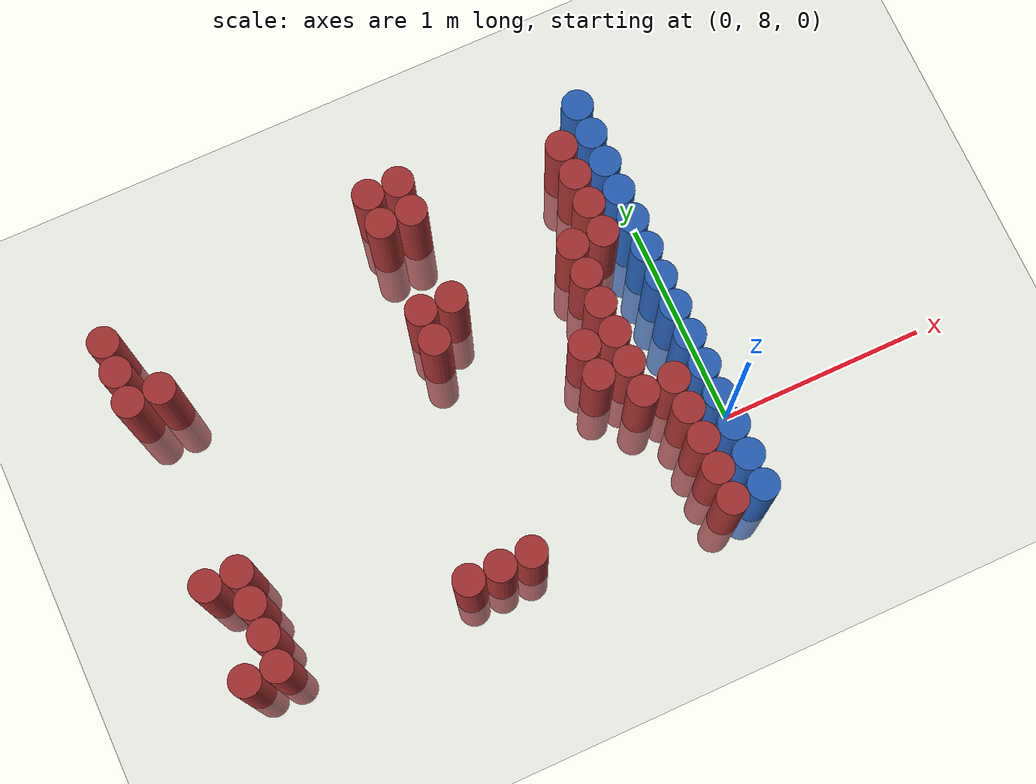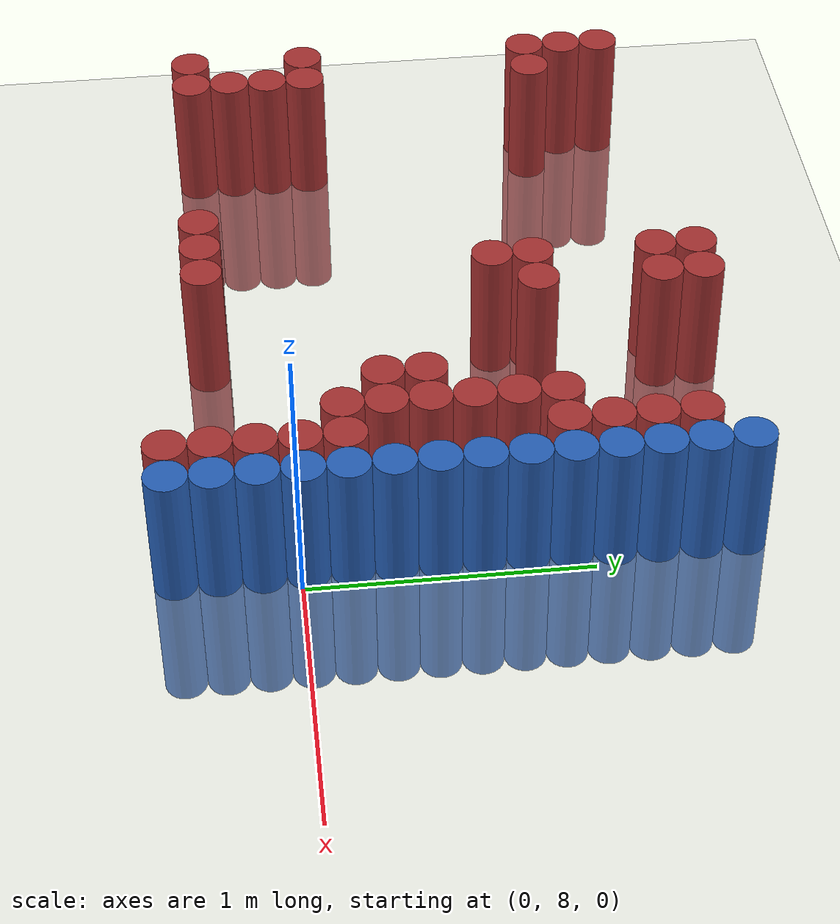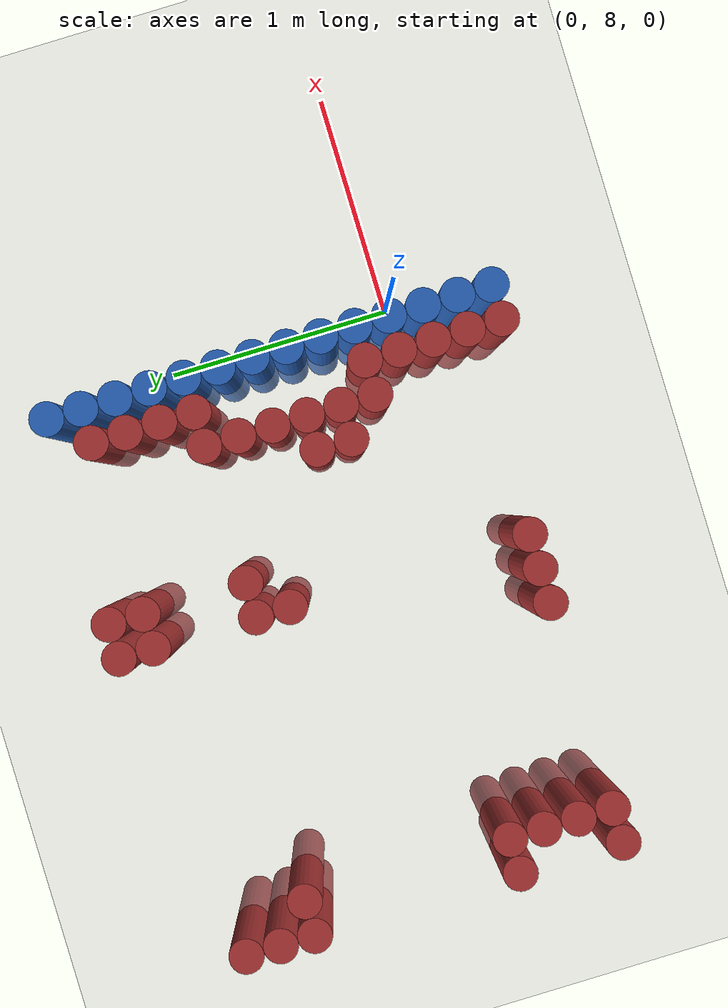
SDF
<sdf version="1.6">
 <world name="default">
  <model name="ground_plane">
   <static>1</static>
   <link name="link">
    <collision name="collision">
     <geometry><plane><normal>0 0 1</normal><size>100 100</size></plane></geometry>
     <surface><friction><ode><mu>100</mu><mu2>50</mu2></ode></friction></surface>
    </collision>
    <visual name="visual">
     <cast_shadows>0</cast_shadows>
     <geometry><plane><normal>0 0 1</normal><size>100 100</size></plane></geometry>
     <material>
      <script><uri>file://media/materials/scripts/gazebo.material</uri><name>Gazebo/Grey</name></script>
     </material>
    </visual>
   </link>
  </model>
  <model name="unit_cylinder_240">
   <static>1</static>
   <pose>-2.475000 7.725000 0.000000 0.000000 0.000000 0.000000</pose>
   <link name="link">
    <inertial>
     <mass>1</mass>
     <inertia><ixx>0.145833</ixx><ixy>0</ixy><ixz>0</ixz><iyy>0.145833</iyy><iyz>0</iyz><izz>0.125</izz></inertia>
    </inertial>
    <collision name="collision">
     <geometry><cylinder><radius>0.075000</radius><length>1</length></cylinder></geometry>
    </collision>
    <visual name="visual">
     <geometry><cylinder><radius>0.075000</radius><length>1</length></cylinder></geometry>
     <material>
      <ambient>0.648000 0.192000 0.192000 1</ambient>
      <diffuse>0.648000 0.192000 0.192000 1</diffuse>
     </material>
     <material>
      <script><name>Gazebo/Grey</name><uri>file://media/materials/scripts/gazebo.material</uri></script>
     </material>
    </visual>
   </link>
  </model>
  <model name="unit_cylinder_241">
   <static>1</static>
   <pose>-2.475000 8.175000 0.000000 0.000000 0.000000 0.000000</pose>
   <link name="link">
    <inertial>
     <mass>1</mass>
     <inertia><ixx>0.145833</ixx><ixy>0</ixy><ixz>0</ixz><iyy>0.145833</iyy><iyz>0</iyz><izz>0.125</izz></inertia>
    </inertial>
    <collision name="collision">
     <geometry><cylinder><radius>0.075000</radius><length>1</length></cylinder></geometry>
    </collision>
    <visual name="visual">
     <geometry><cylinder><radius>0.075000</radius><length>1</length></cylinder></geometry>
     <material>
      <ambient>0.648000 0.192000 0.192000 1</ambient>
      <diffuse>0.648000 0.192000 0.192000 1</diffuse>
     </material>
     <material>
      <script><name>Gazebo/Grey</name><uri>file://media/materials/scripts/gazebo.material</uri></script>
     </material>
    </visual>
   </link>
  </model>
  <model name="unit_cylinder_242">
   <static>1</static>
   <pose>-2.475000 9.075000 0.000000 0.000000 0.000000 0.000000</pose>
   <link name="link">
    <inertial>
     <mass>1</mass>
     <inertia><ixx>0.145833</ixx><ixy>0</ixy><ixz>0</ixz><iyy>0.145833</iyy><iyz>0</iyz><izz>0.125</izz></inertia>
    </inertial>
    <collision name="collision">
     <geometry><cylinder><radius>0.075000</radius><length>1</length></cylinder></geometry>
    </collision>
    <visual name="visual">
     <geometry><cylinder><radius>0.075000</radius><length>1</length></cylinder></geometry>
     <material>
      <ambient>0.648000 0.192000 0.192000 1</ambient>
      <diffuse>0.648000 0.192000 0.192000 1</diffuse>
     </material>
     <material>
      <script><name>Gazebo/Grey</name><uri>file://media/materials/scripts/gazebo.material</uri></script>
     </material>
    </visual>
   </link>
  </model>
  <model name="unit_cylinder_243">
   <static>1</static>
   <pose>-2.475000 9.225000 0.000000 0.000000 0.000000 0.000000</pose>
   <link name="link">
    <inertial>
     <mass>1</mass>
     <inertia><ixx>0.145833</ixx><ixy>0</ixy><ixz>0</ixz><iyy>0.145833</iyy><iyz>0</iyz><izz>0.125</izz></inertia>
    </inertial>
    <collision name="collision">
     <geometry><cylinder><radius>0.075000</radius><length>1</length></cylinder></geometry>
    </collision>
    <visual name="visual">
     <geometry><cylinder><radius>0.075000</radius><length>1</length></cylinder></geometry>
     <material>
      <ambient>0.648000 0.192000 0.192000 1</ambient>
      <diffuse>0.648000 0.192000 0.192000 1</diffuse>
     </material>
     <material>
      <script><name>Gazebo/Grey</name><uri>file://media/materials/scripts/gazebo.material</uri></script>
     </material>
    </visual>
   </link>
  </model>
  <model name="unit_cylinder_244">
   <static>1</static>
   <pose>-2.475000 9.375000 0.000000 0.000000 0.000000 0.000000</pose>
   <link name="link">
    <inertial>
     <mass>1</mass>
     <inertia><ixx>0.145833</ixx><ixy>0</ixy><ixz>0</ixz><iyy>0.145833</iyy><iyz>0</iyz><izz>0.125</izz></inertia>
    </inertial>
    <collision name="collision">
     <geometry><cylinder><radius>0.075000</radius><length>1</length></cylinder></geometry>
    </collision>
    <visual name="visual">
     <geometry><cylinder><radius>0.075000</radius><length>1</length></cylinder></geometry>
     <material>
      <ambient>0.648000 0.192000 0.192000 1</ambient>
      <diffuse>0.648000 0.192000 0.192000 1</diffuse>
     </material>
     <material>
      <script><name>Gazebo/Grey</name><uri>file://media/materials/scripts/gazebo.material</uri></script>
     </material>
    </visual>
   </link>
  </model>
  <model name="unit_cylinder_249">
   <static>1</static>
   <pose>-2.325000 7.725000 0.000000 0.000000 0.000000 0.000000</pose>
   <link name="link">
    <inertial>
     <mass>1</mass>
     <inertia><ixx>0.145833</ixx><ixy>0</ixy><ixz>0</ixz><iyy>0.145833</iyy><iyz>0</iyz><izz>0.125</izz></inertia>
    </inertial>
    <collision name="collision">
     <geometry><cylinder><radius>0.075000</radius><length>1</length></cylinder></geometry>
    </collision>
    <visual name="visual">
     <geometry><cylinder><radius>0.075000</radius><length>1</length></cylinder></geometry>
     <material>
      <ambient>0.648000 0.192000 0.192000 1</ambient>
      <diffuse>0.648000 0.192000 0.192000 1</diffuse>
     </material>
     <material>
      <script><name>Gazebo/Grey</name><uri>file://media/materials/scripts/gazebo.material</uri></script>
     </material>
    </visual>
   </link>
  </model>
  <model name="unit_cylinder_250">
   <static>1</static>
   <pose>-2.325000 7.875000 0.000000 0.000000 0.000000 0.000000</pose>
   <link name="link">
    <inertial>
     <mass>1</mass>
     <inertia><ixx>0.145833</ixx><ixy>0</ixy><ixz>0</ixz><iyy>0.145833</iyy><iyz>0</iyz><izz>0.125</izz></inertia>
    </inertial>
    <collision name="collision">
     <geometry><cylinder><radius>0.075000</radius><length>1</length></cylinder></geometry>
    </collision>
    <visual name="visual">
     <geometry><cylinder><radius>0.075000</radius><length>1</length></cylinder></geometry>
     <material>
      <ambient>0.648000 0.192000 0.192000 1</ambient>
      <diffuse>0.648000 0.192000 0.192000 1</diffuse>
     </material>
     <material>
      <script><name>Gazebo/Grey</name><uri>file://media/materials/scripts/gazebo.material</uri></script>
     </material>
    </visual>
   </link>
  </model>
  <model name="unit_cylinder_251">
   <static>1</static>
   <pose>-2.325000 8.025000 0.000000 0.000000 0.000000 0.000000</pose>
   <link name="link">
    <inertial>
     <mass>1</mass>
     <inertia><ixx>0.145833</ixx><ixy>0</ixy><ixz>0</ixz><iyy>0.145833</iyy><iyz>0</iyz><izz>0.125</izz></inertia>
    </inertial>
    <collision name="collision">
     <geometry><cylinder><radius>0.075000</radius><length>1</length></cylinder></geometry>
    </collision>
    <visual name="visual">
     <geometry><cylinder><radius>0.075000</radius><length>1</length></cylinder></geometry>
     <material>
      <ambient>0.648000 0.192000 0.192000 1</ambient>
      <diffuse>0.648000 0.192000 0.192000 1</diffuse>
     </material>
     <material>
      <script><name>Gazebo/Grey</name><uri>file://media/materials/scripts/gazebo.material</uri></script>
     </material>
    </visual>
   </link>
  </model>
  <model name="unit_cylinder_252">
   <static>1</static>
   <pose>-2.325000 8.175000 0.000000 0.000000 0.000000 0.000000</pose>
   <link name="link">
    <inertial>
     <mass>1</mass>
     <inertia><ixx>0.145833</ixx><ixy>0</ixy><ixz>0</ixz><iyy>0.145833</iyy><iyz>0</iyz><izz>0.125</izz></inertia>
    </inertial>
    <collision name="collision">
     <geometry><cylinder><radius>0.075000</radius><length>1</length></cylinder></geometry>
    </collision>
    <visual name="visual">
     <geometry><cylinder><radius>0.075000</radius><length>1</length></cylinder></geometry>
     <material>
      <ambient>0.648000 0.192000 0.192000 1</ambient>
      <diffuse>0.648000 0.192000 0.192000 1</diffuse>
     </material>
     <material>
      <script><name>Gazebo/Grey</name><uri>file://media/materials/scripts/gazebo.material</uri></script>
     </material>
    </visual>
   </link>
  </model>
  <model name="unit_cylinder_253">
   <static>1</static>
   <pose>-2.325000 9.075000 0.000000 0.000000 0.000000 0.000000</pose>
   <link name="link">
    <inertial>
     <mass>1</mass>
     <inertia><ixx>0.145833</ixx><ixy>0</ixy><ixz>0</ixz><iyy>0.145833</iyy><iyz>0</iyz><izz>0.125</izz></inertia>
    </inertial>
    <collision name="collision">
     <geometry><cylinder><radius>0.075000</radius><length>1</length></cylinder></geometry>
    </collision>
    <visual name="visual">
     <geometry><cylinder><radius>0.075000</radius><length>1</length></cylinder></geometry>
     <material>
      <ambient>0.648000 0.192000 0.192000 1</ambient>
      <diffuse>0.648000 0.192000 0.192000 1</diffuse>
     </material>
     <material>
      <script><name>Gazebo/Grey</name><uri>file://media/materials/scripts/gazebo.material</uri></script>
     </material>
    </visual>
   </link>
  </model>
  <model name="unit_cylinder_277">
   <static>1</static>
   <pose>-1.425000 7.725000 0.000000 0.000000 0.000000 0.000000</pose>
   <link name="link">
    <inertial>
     <mass>1</mass>
     <inertia><ixx>0.145833</ixx><ixy>0</ixy><ixz>0</ixz><iyy>0.145833</iyy><iyz>0</iyz><izz>0.125</izz></inertia>
    </inertial>
    <collision name="collision">
     <geometry><cylinder><radius>0.075000</radius><length>1</length></cylinder></geometry>
    </collision>
    <visual name="visual">
     <geometry><cylinder><radius>0.075000</radius><length>1</length></cylinder></geometry>
     <material>
      <ambient>0.648000 0.192000 0.192000 1</ambient>
      <diffuse>0.648000 0.192000 0.192000 1</diffuse>
     </material>
     <material>
      <script><name>Gazebo/Grey</name><uri>file://media/materials/scripts/gazebo.material</uri></script>
     </material>
    </visual>
   </link>
  </model>
  <model name="unit_cylinder_279">
   <static>1</static>
   <pose>-1.275000 7.725000 0.000000 0.000000 0.000000 0.000000</pose>
   <link name="link">
    <inertial>
     <mass>1</mass>
     <inertia><ixx>0.145833</ixx><ixy>0</ixy><ixz>0</ixz><iyy>0.145833</iyy><iyz>0</iyz><izz>0.125</izz></inertia>
    </inertial>
    <collision name="collision">
     <geometry><cylinder><radius>0.075000</radius><length>1</length></cylinder></geometry>
    </collision>
    <visual name="visual">
     <geometry><cylinder><radius>0.075000</radius><length>1</length></cylinder></geometry>
     <material>
      <ambient>0.648000 0.192000 0.192000 1</ambient>
      <diffuse>0.648000 0.192000 0.192000 1</diffuse>
     </material>
     <material>
      <script><name>Gazebo/Grey</name><uri>file://media/materials/scripts/gazebo.material</uri></script>
     </material>
    </visual>
   </link>
  </model>
  <model name="unit_cylinder_280">
   <static>1</static>
   <pose>-1.125000 7.725000 0.000000 0.000000 0.000000 0.000000</pose>
   <link name="link">
    <inertial>
     <mass>1</mass>
     <inertia><ixx>0.145833</ixx><ixy>0</ixy><ixz>0</ixz><iyy>0.145833</iyy><iyz>0</iyz><izz>0.125</izz></inertia>
    </inertial>
    <collision name="collision">
     <geometry><cylinder><radius>0.075000</radius><length>1</length></cylinder></geometry>
    </collision>
    <visual name="visual">
     <geometry><cylinder><radius>0.075000</radius><length>1</length></cylinder></geometry>
     <material>
      <ambient>0.648000 0.192000 0.192000 1</ambient>
      <diffuse>0.648000 0.192000 0.192000 1</diffuse>
     </material>
     <material>
      <script><name>Gazebo/Grey</name><uri>file://media/materials/scripts/gazebo.material</uri></script>
     </material>
    </visual>
   </link>
  </model>
  <model name="unit_cylinder_281">
   <static>1</static>
   <pose>-1.125000 8.775000 0.000000 0.000000 0.000000 0.000000</pose>
   <link name="link">
    <inertial>
     <mass>1</mass>
     <inertia><ixx>0.145833</ixx><ixy>0</ixy><ixz>0</ixz><iyy>0.145833</iyy><iyz>0</iyz><izz>0.125</izz></inertia>
    </inertial>
    <collision name="collision">
     <geometry><cylinder><radius>0.075000</radius><length>1</length></cylinder></geometry>
    </collision>
    <visual name="visual">
     <geometry><cylinder><radius>0.075000</radius><length>1</length></cylinder></geometry>
     <material>
      <ambient>0.648000 0.192000 0.192000 1</ambient>
      <diffuse>0.648000 0.192000 0.192000 1</diffuse>
     </material>
     <material>
      <script><name>Gazebo/Grey</name><uri>file://media/materials/scripts/gazebo.material</uri></script>
     </material>
    </visual>
   </link>
  </model>
  <model name="unit_cylinder_282">
   <static>1</static>
   <pose>-1.125000 8.925000 0.000000 0.000000 0.000000 0.000000</pose>
   <link name="link">
    <inertial>
     <mass>1</mass>
     <inertia><ixx>0.145833</ixx><ixy>0</ixy><ixz>0</ixz><iyy>0.145833</iyy><iyz>0</iyz><izz>0.125</izz></inertia>
    </inertial>
    <collision name="collision">
     <geometry><cylinder><radius>0.075000</radius><length>1</length></cylinder></geometry>
    </collision>
    <visual name="visual">
     <geometry><cylinder><radius>0.075000</radius><length>1</length></cylinder></geometry>
     <material>
      <ambient>0.648000 0.192000 0.192000 1</ambient>
      <diffuse>0.648000 0.192000 0.192000 1</diffuse>
     </material>
     <material>
      <script><name>Gazebo/Grey</name><uri>file://media/materials/scripts/gazebo.material</uri></script>
     </material>
    </visual>
   </link>
  </model>
  <model name="unit_cylinder_283">
   <static>1</static>
   <pose>-1.125000 9.375000 0.000000 0.000000 0.000000 0.000000</pose>
   <link name="link">
    <inertial>
     <mass>1</mass>
     <inertia><ixx>0.145833</ixx><ixy>0</ixy><ixz>0</ixz><iyy>0.145833</iyy><iyz>0</iyz><izz>0.125</izz></inertia>
    </inertial>
    <collision name="collision">
     <geometry><cylinder><radius>0.075000</radius><length>1</length></cylinder></geometry>
    </collision>
    <visual name="visual">
     <geometry><cylinder><radius>0.075000</radius><length>1</length></cylinder></geometry>
     <material>
      <ambient>0.648000 0.192000 0.192000 1</ambient>
      <diffuse>0.648000 0.192000 0.192000 1</diffuse>
     </material>
     <material>
      <script><name>Gazebo/Grey</name><uri>file://media/materials/scripts/gazebo.material</uri></script>
     </material>
    </visual>
   </link>
  </model>
  <model name="unit_cylinder_284">
   <static>1</static>
   <pose>-1.125000 9.525000 0.000000 0.000000 0.000000 0.000000</pose>
   <link name="link">
    <inertial>
     <mass>1</mass>
     <inertia><ixx>0.145833</ixx><ixy>0</ixy><ixz>0</ixz><iyy>0.145833</iyy><iyz>0</iyz><izz>0.125</izz></inertia>
    </inertial>
    <collision name="collision">
     <geometry><cylinder><radius>0.075000</radius><length>1</length></cylinder></geometry>
    </collision>
    <visual name="visual">
     <geometry><cylinder><radius>0.075000</radius><length>1</length></cylinder></geometry>
     <material>
      <ambient>0.648000 0.192000 0.192000 1</ambient>
      <diffuse>0.648000 0.192000 0.192000 1</diffuse>
     </material>
     <material>
      <script><name>Gazebo/Grey</name><uri>file://media/materials/scripts/gazebo.material</uri></script>
     </material>
    </visual>
   </link>
  </model>
  <model name="unit_cylinder_285">
   <static>1</static>
   <pose>-0.975000 8.925000 0.000000 0.000000 0.000000 0.000000</pose>
   <link name="link">
    <inertial>
     <mass>1</mass>
     <inertia><ixx>0.145833</ixx><ixy>0</ixy><ixz>0</ixz><iyy>0.145833</iyy><iyz>0</iyz><izz>0.125</izz></inertia>
    </inertial>
    <collision name="collision">
     <geometry><cylinder><radius>0.075000</radius><length>1</length></cylinder></geometry>
    </collision>
    <visual name="visual">
     <geometry><cylinder><radius>0.075000</radius><length>1</length></cylinder></geometry>
     <material>
      <ambient>0.648000 0.192000 0.192000 1</ambient>
      <diffuse>0.648000 0.192000 0.192000 1</diffuse>
     </material>
     <material>
      <script><name>Gazebo/Grey</name><uri>file://media/materials/scripts/gazebo.material</uri></script>
     </material>
    </visual>
   </link>
  </model>
  <model name="unit_cylinder_286">
   <static>1</static>
   <pose>-0.975000 9.375000 0.000000 0.000000 0.000000 0.000000</pose>
   <link name="link">
    <inertial>
     <mass>1</mass>
     <inertia><ixx>0.145833</ixx><ixy>0</ixy><ixz>0</ixz><iyy>0.145833</iyy><iyz>0</iyz><izz>0.125</izz></inertia>
    </inertial>
    <collision name="collision">
     <geometry><cylinder><radius>0.075000</radius><length>1</length></cylinder></geometry>
    </collision>
    <visual name="visual">
     <geometry><cylinder><radius>0.075000</radius><length>1</length></cylinder></geometry>
     <material>
      <ambient>0.648000 0.192000 0.192000 1</ambient>
      <diffuse>0.648000 0.192000 0.192000 1</diffuse>
     </material>
     <material>
      <script><name>Gazebo/Grey</name><uri>file://media/materials/scripts/gazebo.material</uri></script>
     </material>
    </visual>
   </link>
  </model>
  <model name="unit_cylinder_287">
   <static>1</static>
   <pose>-0.975000 9.525000 0.000000 0.000000 0.000000 0.000000</pose>
   <link name="link">
    <inertial>
     <mass>1</mass>
     <inertia><ixx>0.145833</ixx><ixy>0</ixy><ixz>0</ixz><iyy>0.145833</iyy><iyz>0</iyz><izz>0.125</izz></inertia>
    </inertial>
    <collision name="collision">
     <geometry><cylinder><radius>0.075000</radius><length>1</length></cylinder></geometry>
    </collision>
    <visual name="visual">
     <geometry><cylinder><radius>0.075000</radius><length>1</length></cylinder></geometry>
     <material>
      <ambient>0.648000 0.192000 0.192000 1</ambient>
      <diffuse>0.648000 0.192000 0.192000 1</diffuse>
     </material>
     <material>
      <script><name>Gazebo/Grey</name><uri>file://media/materials/scripts/gazebo.material</uri></script>
     </material>
    </visual>
   </link>
  </model>
  <model name="unit_cylinder_299">
   <static>1</static>
   <pose>-0.525000 8.325000 0.000000 0.000000 0.000000 0.000000</pose>
   <link name="link">
    <inertial>
     <mass>1</mass>
     <inertia><ixx>0.145833</ixx><ixy>0</ixy><ixz>0</ixz><iyy>0.145833</iyy><iyz>0</iyz><izz>0.125</izz></inertia>
    </inertial>
    <collision name="collision">
     <geometry><cylinder><radius>0.075000</radius><length>1</length></cylinder></geometry>
    </collision>
    <visual name="visual">
     <geometry><cylinder><radius>0.075000</radius><length>1</length></cylinder></geometry>
     <material>
      <ambient>0.648000 0.192000 0.192000 1</ambient>
      <diffuse>0.648000 0.192000 0.192000 1</diffuse>
     </material>
     <material>
      <script><name>Gazebo/Grey</name><uri>file://media/materials/scripts/gazebo.material</uri></script>
     </material>
    </visual>
   </link>
  </model>
  <model name="unit_cylinder_300">
   <static>1</static>
   <pose>-0.525000 8.475000 0.000000 0.000000 0.000000 0.000000</pose>
   <link name="link">
    <inertial>
     <mass>1</mass>
     <inertia><ixx>0.145833</ixx><ixy>0</ixy><ixz>0</ixz><iyy>0.145833</iyy><iyz>0</iyz><izz>0.125</izz></inertia>
    </inertial>
    <collision name="collision">
     <geometry><cylinder><radius>0.075000</radius><length>1</length></cylinder></geometry>
    </collision>
    <visual name="visual">
     <geometry><cylinder><radius>0.075000</radius><length>1</length></cylinder></geometry>
     <material>
      <ambient>0.648000 0.192000 0.192000 1</ambient>
      <diffuse>0.648000 0.192000 0.192000 1</diffuse>
     </material>
     <material>
      <script><name>Gazebo/Grey</name><uri>file://media/materials/scripts/gazebo.material</uri></script>
     </material>
    </visual>
   </link>
  </model>
  <model name="unit_cylinder_305">
   <static>1</static>
   <pose>-0.375000 8.175000 0.000000 0.000000 0.000000 0.000000</pose>
   <link name="link">
    <inertial>
     <mass>1</mass>
     <inertia><ixx>0.145833</ixx><ixy>0</ixy><ixz>0</ixz><iyy>0.145833</iyy><iyz>0</iyz><izz>0.125</izz></inertia>
    </inertial>
    <collision name="collision">
     <geometry><cylinder><radius>0.075000</radius><length>1</length></cylinder></geometry>
    </collision>
    <visual name="visual">
     <geometry><cylinder><radius>0.075000</radius><length>1</length></cylinder></geometry>
     <material>
      <ambient>0.648000 0.192000 0.192000 1</ambient>
      <diffuse>0.648000 0.192000 0.192000 1</diffuse>
     </material>
     <material>
      <script><name>Gazebo/Grey</name><uri>file://media/materials/scripts/gazebo.material</uri></script>
     </material>
    </visual>
   </link>
  </model>
  <model name="unit_cylinder_306">
   <static>1</static>
   <pose>-0.375000 8.325000 0.000000 0.000000 0.000000 0.000000</pose>
   <link name="link">
    <inertial>
     <mass>1</mass>
     <inertia><ixx>0.145833</ixx><ixy>0</ixy><ixz>0</ixz><iyy>0.145833</iyy><iyz>0</iyz><izz>0.125</izz></inertia>
    </inertial>
    <collision name="collision">
     <geometry><cylinder><radius>0.075000</radius><length>1</length></cylinder></geometry>
    </collision>
    <visual name="visual">
     <geometry><cylinder><radius>0.075000</radius><length>1</length></cylinder></geometry>
     <material>
      <ambient>0.648000 0.192000 0.192000 1</ambient>
      <diffuse>0.648000 0.192000 0.192000 1</diffuse>
     </material>
     <material>
      <script><name>Gazebo/Grey</name><uri>file://media/materials/scripts/gazebo.material</uri></script>
     </material>
    </visual>
   </link>
  </model>
  <model name="unit_cylinder_307">
   <static>1</static>
   <pose>-0.375000 8.475000 0.000000 0.000000 0.000000 0.000000</pose>
   <link name="link">
    <inertial>
     <mass>1</mass>
     <inertia><ixx>0.145833</ixx><ixy>0</ixy><ixz>0</ixz><iyy>0.145833</iyy><iyz>0</iyz><izz>0.125</izz></inertia>
    </inertial>
    <collision name="collision">
     <geometry><cylinder><radius>0.075000</radius><length>1</length></cylinder></geometry>
    </collision>
    <visual name="visual">
     <geometry><cylinder><radius>0.075000</radius><length>1</length></cylinder></geometry>
     <material>
      <ambient>0.648000 0.192000 0.192000 1</ambient>
      <diffuse>0.648000 0.192000 0.192000 1</diffuse>
     </material>
     <material>
      <script><name>Gazebo/Grey</name><uri>file://media/materials/scripts/gazebo.material</uri></script>
     </material>
    </visual>
   </link>
  </model>
  <model name="unit_cylinder_308">
   <static>1</static>
   <pose>-0.375000 8.625000 0.000000 0.000000 0.000000 0.000000</pose>
   <link name="link">
    <inertial>
     <mass>1</mass>
     <inertia><ixx>0.145833</ixx><ixy>0</ixy><ixz>0</ixz><iyy>0.145833</iyy><iyz>0</iyz><izz>0.125</izz></inertia>
    </inertial>
    <collision name="collision">
     <geometry><cylinder><radius>0.075000</radius><length>1</length></cylinder></geometry>
    </collision>
    <visual name="visual">
     <geometry><cylinder><radius>0.075000</radius><length>1</length></cylinder></geometry>
     <material>
      <ambient>0.648000 0.192000 0.192000 1</ambient>
      <diffuse>0.648000 0.192000 0.192000 1</diffuse>
     </material>
     <material>
      <script><name>Gazebo/Grey</name><uri>file://media/materials/scripts/gazebo.material</uri></script>
     </material>
    </visual>
   </link>
  </model>
  <model name="unit_cylinder_309">
   <static>1</static>
   <pose>-0.375000 8.775000 0.000000 0.000000 0.000000 0.000000</pose>
   <link name="link">
    <inertial>
     <mass>1</mass>
     <inertia><ixx>0.145833</ixx><ixy>0</ixy><ixz>0</ixz><iyy>0.145833</iyy><iyz>0</iyz><izz>0.125</izz></inertia>
    </inertial>
    <collision name="collision">
     <geometry><cylinder><radius>0.075000</radius><length>1</length></cylinder></geometry>
    </collision>
    <visual name="visual">
     <geometry><cylinder><radius>0.075000</radius><length>1</length></cylinder></geometry>
     <material>
      <ambient>0.648000 0.192000 0.192000 1</ambient>
      <diffuse>0.648000 0.192000 0.192000 1</diffuse>
     </material>
     <material>
      <script><name>Gazebo/Grey</name><uri>file://media/materials/scripts/gazebo.material</uri></script>
     </material>
    </visual>
   </link>
  </model>
  <model name="unit_cylinder_310">
   <static>1</static>
   <pose>-0.375000 8.925000 0.000000 0.000000 0.000000 0.000000</pose>
   <link name="link">
    <inertial>
     <mass>1</mass>
     <inertia><ixx>0.145833</ixx><ixy>0</ixy><ixz>0</ixz><iyy>0.145833</iyy><iyz>0</iyz><izz>0.125</izz></inertia>
    </inertial>
    <collision name="collision">
     <geometry><cylinder><radius>0.075000</radius><length>1</length></cylinder></geometry>
    </collision>
    <visual name="visual">
     <geometry><cylinder><radius>0.075000</radius><length>1</length></cylinder></geometry>
     <material>
      <ambient>0.648000 0.192000 0.192000 1</ambient>
      <diffuse>0.648000 0.192000 0.192000 1</diffuse>
     </material>
     <material>
      <script><name>Gazebo/Grey</name><uri>file://media/materials/scripts/gazebo.material</uri></script>
     </material>
    </visual>
   </link>
  </model>
  <model name="unit_cylinder_318">
   <static>1</static>
   <pose>-0.225000 7.575000 0.000000 0.000000 0.000000 0.000000</pose>
   <link name="link">
    <inertial>
     <mass>1</mass>
     <inertia><ixx>0.145833</ixx><ixy>0</ixy><ixz>0</ixz><iyy>0.145833</iyy><iyz>0</iyz><izz>0.125</izz></inertia>
    </inertial>
    <collision name="collision">
     <geometry><cylinder><radius>0.075000</radius><length>1</length></cylinder></geometry>
    </collision>
    <visual name="visual">
     <geometry><cylinder><radius>0.075000</radius><length>1</length></cylinder></geometry>
     <material>
      <ambient>0.648000 0.192000 0.192000 1</ambient>
      <diffuse>0.648000 0.192000 0.192000 1</diffuse>
     </material>
     <material>
      <script><name>Gazebo/Grey</name><uri>file://media/materials/scripts/gazebo.material</uri></script>
     </material>
    </visual>
   </link>
  </model>
  <model name="unit_cylinder_319">
   <static>1</static>
   <pose>-0.225000 7.725000 0.000000 0.000000 0.000000 0.000000</pose>
   <link name="link">
    <inertial>
     <mass>1</mass>
     <inertia><ixx>0.145833</ixx><ixy>0</ixy><ixz>0</ixz><iyy>0.145833</iyy><iyz>0</iyz><izz>0.125</izz></inertia>
    </inertial>
    <collision name="collision">
     <geometry><cylinder><radius>0.075000</radius><length>1</length></cylinder></geometry>
    </collision>
    <visual name="visual">
     <geometry><cylinder><radius>0.075000</radius><length>1</length></cylinder></geometry>
     <material>
      <ambient>0.648000 0.192000 0.192000 1</ambient>
      <diffuse>0.648000 0.192000 0.192000 1</diffuse>
     </material>
     <material>
      <script><name>Gazebo/Grey</name><uri>file://media/materials/scripts/gazebo.material</uri></script>
     </material>
    </visual>
   </link>
  </model>
  <model name="unit_cylinder_320">
   <static>1</static>
   <pose>-0.225000 7.875000 0.000000 0.000000 0.000000 0.000000</pose>
   <link name="link">
    <inertial>
     <mass>1</mass>
     <inertia><ixx>0.145833</ixx><ixy>0</ixy><ixz>0</ixz><iyy>0.145833</iyy><iyz>0</iyz><izz>0.125</izz></inertia>
    </inertial>
    <collision name="collision">
     <geometry><cylinder><radius>0.075000</radius><length>1</length></cylinder></geometry>
    </collision>
    <visual name="visual">
     <geometry><cylinder><radius>0.075000</radius><length>1</length></cylinder></geometry>
     <material>
      <ambient>0.648000 0.192000 0.192000 1</ambient>
      <diffuse>0.648000 0.192000 0.192000 1</diffuse>
     </material>
     <material>
      <script><name>Gazebo/Grey</name><uri>file://media/materials/scripts/gazebo.material</uri></script>
     </material>
    </visual>
   </link>
  </model>
  <model name="unit_cylinder_321">
   <static>1</static>
   <pose>-0.225000 8.025000 0.000000 0.000000 0.000000 0.000000</pose>
   <link name="link">
    <inertial>
     <mass>1</mass>
     <inertia><ixx>0.145833</ixx><ixy>0</ixy><ixz>0</ixz><iyy>0.145833</iyy><iyz>0</iyz><izz>0.125</izz></inertia>
    </inertial>
    <collision name="collision">
     <geometry><cylinder><radius>0.075000</radius><length>1</length></cylinder></geometry>
    </collision>
    <visual name="visual">
     <geometry><cylinder><radius>0.075000</radius><length>1</length></cylinder></geometry>
     <material>
      <ambient>0.648000 0.192000 0.192000 1</ambient>
      <diffuse>0.648000 0.192000 0.192000 1</diffuse>
     </material>
     <material>
      <script><name>Gazebo/Grey</name><uri>file://media/materials/scripts/gazebo.material</uri></script>
     </material>
    </visual>
   </link>
  </model>
  <model name="unit_cylinder_322">
   <static>1</static>
   <pose>-0.225000 8.175000 0.000000 0.000000 0.000000 0.000000</pose>
   <link name="link">
    <inertial>
     <mass>1</mass>
     <inertia><ixx>0.145833</ixx><ixy>0</ixy><ixz>0</ixz><iyy>0.145833</iyy><iyz>0</iyz><izz>0.125</izz></inertia>
    </inertial>
    <collision name="collision">
     <geometry><cylinder><radius>0.075000</radius><length>1</length></cylinder></geometry>
    </collision>
    <visual name="visual">
     <geometry><cylinder><radius>0.075000</radius><length>1</length></cylinder></geometry>
     <material>
      <ambient>0.648000 0.192000 0.192000 1</ambient>
      <diffuse>0.648000 0.192000 0.192000 1</diffuse>
     </material>
     <material>
      <script><name>Gazebo/Grey</name><uri>file://media/materials/scripts/gazebo.material</uri></script>
     </material>
    </visual>
   </link>
  </model>
  <model name="unit_cylinder_323">
   <static>1</static>
   <pose>-0.225000 8.925000 0.000000 0.000000 0.000000 0.000000</pose>
   <link name="link">
    <inertial>
     <mass>1</mass>
     <inertia><ixx>0.145833</ixx><ixy>0</ixy><ixz>0</ixz><iyy>0.145833</iyy><iyz>0</iyz><izz>0.125</izz></inertia>
    </inertial>
    <collision name="collision">
     <geometry><cylinder><radius>0.075000</radius><length>1</length></cylinder></geometry>
    </collision>
    <visual name="visual">
     <geometry><cylinder><radius>0.075000</radius><length>1</length></cylinder></geometry>
     <material>
      <ambient>0.648000 0.192000 0.192000 1</ambient>
      <diffuse>0.648000 0.192000 0.192000 1</diffuse>
     </material>
     <material>
      <script><name>Gazebo/Grey</name><uri>file://media/materials/scripts/gazebo.material</uri></script>
     </material>
    </visual>
   </link>
  </model>
  <model name="unit_cylinder_324">
   <static>1</static>
   <pose>-0.225000 9.075000 0.000000 0.000000 0.000000 0.000000</pose>
   <link name="link">
    <inertial>
     <mass>1</mass>
     <inertia><ixx>0.145833</ixx><ixy>0</ixy><ixz>0</ixz><iyy>0.145833</iyy><iyz>0</iyz><izz>0.125</izz></inertia>
    </inertial>
    <collision name="collision">
     <geometry><cylinder><radius>0.075000</radius><length>1</length></cylinder></geometry>
    </collision>
    <visual name="visual">
     <geometry><cylinder><radius>0.075000</radius><length>1</length></cylinder></geometry>
     <material>
      <ambient>0.648000 0.192000 0.192000 1</ambient>
      <diffuse>0.648000 0.192000 0.192000 1</diffuse>
     </material>
     <material>
      <script><name>Gazebo/Grey</name><uri>file://media/materials/scripts/gazebo.material</uri></script>
     </material>
    </visual>
   </link>
  </model>
  <model name="unit_cylinder_325">
   <static>1</static>
   <pose>-0.225000 9.225000 0.000000 0.000000 0.000000 0.000000</pose>
   <link name="link">
    <inertial>
     <mass>1</mass>
     <inertia><ixx>0.145833</ixx><ixy>0</ixy><ixz>0</ixz><iyy>0.145833</iyy><iyz>0</iyz><izz>0.125</izz></inertia>
    </inertial>
    <collision name="collision">
     <geometry><cylinder><radius>0.075000</radius><length>1</length></cylinder></geometry>
    </collision>
    <visual name="visual">
     <geometry><cylinder><radius>0.075000</radius><length>1</length></cylinder></geometry>
     <material>
      <ambient>0.648000 0.192000 0.192000 1</ambient>
      <diffuse>0.648000 0.192000 0.192000 1</diffuse>
     </material>
     <material>
      <script><name>Gazebo/Grey</name><uri>file://media/materials/scripts/gazebo.material</uri></script>
     </material>
    </visual>
   </link>
  </model>
  <model name="unit_cylinder_326">
   <static>1</static>
   <pose>-0.225000 9.375000 0.000000 0.000000 0.000000 0.000000</pose>
   <link name="link">
    <inertial>
     <mass>1</mass>
     <inertia><ixx>0.145833</ixx><ixy>0</ixy><ixz>0</ixz><iyy>0.145833</iyy><iyz>0</iyz><izz>0.125</izz></inertia>
    </inertial>
    <collision name="collision">
     <geometry><cylinder><radius>0.075000</radius><length>1</length></cylinder></geometry>
    </collision>
    <visual name="visual">
     <geometry><cylinder><radius>0.075000</radius><length>1</length></cylinder></geometry>
     <material>
      <ambient>0.648000 0.192000 0.192000 1</ambient>
      <diffuse>0.648000 0.192000 0.192000 1</diffuse>
     </material>
     <material>
      <script><name>Gazebo/Grey</name><uri>file://media/materials/scripts/gazebo.material</uri></script>
     </material>
    </visual>
   </link>
  </model>
  <model name="unit_cylinder_343">
   <static>1</static>
   <pose>-0.075000 7.575000 0.000000 0.000000 0.000000 0.000000</pose>
   <link name="link">
    <inertial>
     <mass>1</mass>
     <inertia><ixx>0.145833</ixx><ixy>0</ixy><ixz>0</ixz><iyy>0.145833</iyy><iyz>0</iyz><izz>0.125</izz></inertia>
    </inertial>
    <collision name="collision">
     <geometry><cylinder><radius>0.075000</radius><length>1</length></cylinder></geometry>
    </collision>
    <visual name="visual">
     <geometry><cylinder><radius>0.075000</radius><length>1</length></cylinder></geometry>
     <material>
      <ambient>0.152000 0.379000 0.720000 1</ambient>
      <diffuse>0.152000 0.379000 0.720000 1</diffuse>
     </material>
     <material>
      <script><name>Gazebo/Grey</name><uri>file://media/materials/scripts/gazebo.material</uri></script>
     </material>
    </visual>
   </link>
  </model>
  <model name="unit_cylinder_344">
   <static>1</static>
   <pose>-0.075000 7.725000 0.000000 0.000000 0.000000 0.000000</pose>
   <link name="link">
    <inertial>
     <mass>1</mass>
     <inertia><ixx>0.145833</ixx><ixy>0</ixy><ixz>0</ixz><iyy>0.145833</iyy><iyz>0</iyz><izz>0.125</izz></inertia>
    </inertial>
    <collision name="collision">
     <geometry><cylinder><radius>0.075000</radius><length>1</length></cylinder></geometry>
    </collision>
    <visual name="visual">
     <geometry><cylinder><radius>0.075000</radius><length>1</length></cylinder></geometry>
     <material>
      <ambient>0.152000 0.379000 0.720000 1</ambient>
      <diffuse>0.152000 0.379000 0.720000 1</diffuse>
     </material>
     <material>
      <script><name>Gazebo/Grey</name><uri>file://media/materials/scripts/gazebo.material</uri></script>
     </material>
    </visual>
   </link>
  </model>
  <model name="unit_cylinder_345">
   <static>1</static>
   <pose>-0.075000 7.875000 0.000000 0.000000 0.000000 0.000000</pose>
   <link name="link">
    <inertial>
     <mass>1</mass>
     <inertia><ixx>0.145833</ixx><ixy>0</ixy><ixz>0</ixz><iyy>0.145833</iyy><iyz>0</iyz><izz>0.125</izz></inertia>
    </inertial>
    <collision name="collision">
     <geometry><cylinder><radius>0.075000</radius><length>1</length></cylinder></geometry>
    </collision>
    <visual name="visual">
     <geometry><cylinder><radius>0.075000</radius><length>1</length></cylinder></geometry>
     <material>
      <ambient>0.152000 0.379000 0.720000 1</ambient>
      <diffuse>0.152000 0.379000 0.720000 1</diffuse>
     </material>
     <material>
      <script><name>Gazebo/Grey</name><uri>file://media/materials/scripts/gazebo.material</uri></script>
     </material>
    </visual>
   </link>
  </model>
  <model name="unit_cylinder_346">
   <static>1</static>
   <pose>-0.075000 8.025000 0.000000 0.000000 0.000000 0.000000</pose>
   <link name="link">
    <inertial>
     <mass>1</mass>
     <inertia><ixx>0.145833</ixx><ixy>0</ixy><ixz>0</ixz><iyy>0.145833</iyy><iyz>0</iyz><izz>0.125</izz></inertia>
    </inertial>
    <collision name="collision">
     <geometry><cylinder><radius>0.075000</radius><length>1</length></cylinder></geometry>
    </collision>
    <visual name="visual">
     <geometry><cylinder><radius>0.075000</radius><length>1</length></cylinder></geometry>
     <material>
      <ambient>0.152000 0.379000 0.720000 1</ambient>
      <diffuse>0.152000 0.379000 0.720000 1</diffuse>
     </material>
     <material>
      <script><name>Gazebo/Grey</name><uri>file://media/materials/scripts/gazebo.material</uri></script>
     </material>
    </visual>
   </link>
  </model>
  <model name="unit_cylinder_347">
   <static>1</static>
   <pose>-0.075000 8.175000 0.000000 0.000000 0.000000 0.000000</pose>
   <link name="link">
    <inertial>
     <mass>1</mass>
     <inertia><ixx>0.145833</ixx><ixy>0</ixy><ixz>0</ixz><iyy>0.145833</iyy><iyz>0</iyz><izz>0.125</izz></inertia>
    </inertial>
    <collision name="collision">
     <geometry><cylinder><radius>0.075000</radius><length>1</length></cylinder></geometry>
    </collision>
    <visual name="visual">
     <geometry><cylinder><radius>0.075000</radius><length>1</length></cylinder></geometry>
     <material>
      <ambient>0.152000 0.379000 0.720000 1</ambient>
      <diffuse>0.152000 0.379000 0.720000 1</diffuse>
     </material>
     <material>
      <script><name>Gazebo/Grey</name><uri>file://media/materials/scripts/gazebo.material</uri></script>
     </material>
    </visual>
   </link>
  </model>
  <model name="unit_cylinder_348">
   <static>1</static>
   <pose>-0.075000 8.325000 0.000000 0.000000 0.000000 0.000000</pose>
   <link name="link">
    <inertial>
     <mass>1</mass>
     <inertia><ixx>0.145833</ixx><ixy>0</ixy><ixz>0</ixz><iyy>0.145833</iyy><iyz>0</iyz><izz>0.125</izz></inertia>
    </inertial>
    <collision name="collision">
     <geometry><cylinder><radius>0.075000</radius><length>1</length></cylinder></geometry>
    </collision>
    <visual name="visual">
     <geometry><cylinder><radius>0.075000</radius><length>1</length></cylinder></geometry>
     <material>
      <ambient>0.152000 0.379000 0.720000 1</ambient>
      <diffuse>0.152000 0.379000 0.720000 1</diffuse>
     </material>
     <material>
      <script><name>Gazebo/Grey</name><uri>file://media/materials/scripts/gazebo.material</uri></script>
     </material>
    </visual>
   </link>
  </model>
  <model name="unit_cylinder_349">
   <static>1</static>
   <pose>-0.075000 8.475000 0.000000 0.000000 0.000000 0.000000</pose>
   <link name="link">
    <inertial>
     <mass>1</mass>
     <inertia><ixx>0.145833</ixx><ixy>0</ixy><ixz>0</ixz><iyy>0.145833</iyy><iyz>0</iyz><izz>0.125</izz></inertia>
    </inertial>
    <collision name="collision">
     <geometry><cylinder><radius>0.075000</radius><length>1</length></cylinder></geometry>
    </collision>
    <visual name="visual">
     <geometry><cylinder><radius>0.075000</radius><length>1</length></cylinder></geometry>
     <material>
      <ambient>0.152000 0.379000 0.720000 1</ambient>
      <diffuse>0.152000 0.379000 0.720000 1</diffuse>
     </material>
     <material>
      <script><name>Gazebo/Grey</name><uri>file://media/materials/scripts/gazebo.material</uri></script>
     </material>
    </visual>
   </link>
  </model>
  <model name="unit_cylinder_350">
   <static>1</static>
   <pose>-0.075000 8.625000 0.000000 0.000000 0.000000 0.000000</pose>
   <link name="link">
    <inertial>
     <mass>1</mass>
     <inertia><ixx>0.145833</ixx><ixy>0</ixy><ixz>0</ixz><iyy>0.145833</iyy><iyz>0</iyz><izz>0.125</izz></inertia>
    </inertial>
    <collision name="collision">
     <geometry><cylinder><radius>0.075000</radius><length>1</length></cylinder></geometry>
    </collision>
    <visual name="visual">
     <geometry><cylinder><radius>0.075000</radius><length>1</length></cylinder></geometry>
     <material>
      <ambient>0.152000 0.379000 0.720000 1</ambient>
      <diffuse>0.152000 0.379000 0.720000 1</diffuse>
     </material>
     <material>
      <script><name>Gazebo/Grey</name><uri>file://media/materials/scripts/gazebo.material</uri></script>
     </material>
    </visual>
   </link>
  </model>
  <model name="unit_cylinder_351">
   <static>1</static>
   <pose>-0.075000 8.775000 0.000000 0.000000 0.000000 0.000000</pose>
   <link name="link">
    <inertial>
     <mass>1</mass>
     <inertia><ixx>0.145833</ixx><ixy>0</ixy><ixz>0</ixz><iyy>0.145833</iyy><iyz>0</iyz><izz>0.125</izz></inertia>
    </inertial>
    <collision name="collision">
     <geometry><cylinder><radius>0.075000</radius><length>1</length></cylinder></geometry>
    </collision>
    <visual name="visual">
     <geometry><cylinder><radius>0.075000</radius><length>1</length></cylinder></geometry>
     <material>
      <ambient>0.152000 0.379000 0.720000 1</ambient>
      <diffuse>0.152000 0.379000 0.720000 1</diffuse>
     </material>
     <material>
      <script><name>Gazebo/Grey</name><uri>file://media/materials/scripts/gazebo.material</uri></script>
     </material>
    </visual>
   </link>
  </model>
  <model name="unit_cylinder_352">
   <static>1</static>
   <pose>-0.075000 8.925000 0.000000 0.000000 0.000000 0.000000</pose>
   <link name="link">
    <inertial>
     <mass>1</mass>
     <inertia><ixx>0.145833</ixx><ixy>0</ixy><ixz>0</ixz><iyy>0.145833</iyy><iyz>0</iyz><izz>0.125</izz></inertia>
    </inertial>
    <collision name="collision">
     <geometry><cylinder><radius>0.075000</radius><length>1</length></cylinder></geometry>
    </collision>
    <visual name="visual">
     <geometry><cylinder><radius>0.075000</radius><length>1</length></cylinder></geometry>
     <material>
      <ambient>0.152000 0.379000 0.720000 1</ambient>
      <diffuse>0.152000 0.379000 0.720000 1</diffuse>
     </material>
     <material>
      <script><name>Gazebo/Grey</name><uri>file://media/materials/scripts/gazebo.material</uri></script>
     </material>
    </visual>
   </link>
  </model>
  <model name="unit_cylinder_353">
   <static>1</static>
   <pose>-0.075000 9.075000 0.000000 0.000000 0.000000 0.000000</pose>
   <link name="link">
    <inertial>
     <mass>1</mass>
     <inertia><ixx>0.145833</ixx><ixy>0</ixy><ixz>0</ixz><iyy>0.145833</iyy><iyz>0</iyz><izz>0.125</izz></inertia>
    </inertial>
    <collision name="collision">
     <geometry><cylinder><radius>0.075000</radius><length>1</length></cylinder></geometry>
    </collision>
    <visual name="visual">
     <geometry><cylinder><radius>0.075000</radius><length>1</length></cylinder></geometry>
     <material>
      <ambient>0.152000 0.379000 0.720000 1</ambient>
      <diffuse>0.152000 0.379000 0.720000 1</diffuse>
     </material>
     <material>
      <script><name>Gazebo/Grey</name><uri>file://media/materials/scripts/gazebo.material</uri></script>
     </material>
    </visual>
   </link>
  </model>
  <model name="unit_cylinder_354">
   <static>1</static>
   <pose>-0.075000 9.225000 0.000000 0.000000 0.000000 0.000000</pose>
   <link name="link">
    <inertial>
     <mass>1</mass>
     <inertia><ixx>0.145833</ixx><ixy>0</ixy><ixz>0</ixz><iyy>0.145833</iyy><iyz>0</iyz><izz>0.125</izz></inertia>
    </inertial>
    <collision name="collision">
     <geometry><cylinder><radius>0.075000</radius><length>1</length></cylinder></geometry>
    </collision>
    <visual name="visual">
     <geometry><cylinder><radius>0.075000</radius><length>1</length></cylinder></geometry>
     <material>
      <ambient>0.152000 0.379000 0.720000 1</ambient>
      <diffuse>0.152000 0.379000 0.720000 1</diffuse>
     </material>
     <material>
      <script><name>Gazebo/Grey</name><uri>file://media/materials/scripts/gazebo.material</uri></script>
     </material>
    </visual>
   </link>
  </model>
  <model name="unit_cylinder_355">
   <static>1</static>
   <pose>-0.075000 9.375000 0.000000 0.000000 0.000000 0.000000</pose>
   <link name="link">
    <inertial>
     <mass>1</mass>
     <inertia><ixx>0.145833</ixx><ixy>0</ixy><ixz>0</ixz><iyy>0.145833</iyy><iyz>0</iyz><izz>0.125</izz></inertia>
    </inertial>
    <collision name="collision">
     <geometry><cylinder><radius>0.075000</radius><length>1</length></cylinder></geometry>
    </collision>
    <visual name="visual">
     <geometry><cylinder><radius>0.075000</radius><length>1</length></cylinder></geometry>
     <material>
      <ambient>0.152000 0.379000 0.720000 1</ambient>
      <diffuse>0.152000 0.379000 0.720000 1</diffuse>
     </material>
     <material>
      <script><name>Gazebo/Grey</name><uri>file://media/materials/scripts/gazebo.material</uri></script>
     </material>
    </visual>
   </link>
  </model>
  <model name="unit_cylinder_356">
   <static>1</static>
   <pose>-0.075000 9.525000 0.000000 0.000000 0.000000 0.000000</pose>
   <link name="link">
    <inertial>
     <mass>1</mass>
     <inertia><ixx>0.145833</ixx><ixy>0</ixy><ixz>0</ixz><iyy>0.145833</iyy><iyz>0</iyz><izz>0.125</izz></inertia>
    </inertial>
    <collision name="collision">
     <geometry><cylinder><radius>0.075000</radius><length>1</length></cylinder></geometry>
    </collision>
    <visual name="visual">
     <geometry><cylinder><radius>0.075000</radius><length>1</length></cylinder></geometry>
     <material>
      <ambient>0.152000 0.379000 0.720000 1</ambient>
      <diffuse>0.152000 0.379000 0.720000 1</diffuse>
     </material>
     <material>
      <script><name>Gazebo/Grey</name><uri>file://media/materials/scripts/gazebo.material</uri></script>
     </material>
    </visual>
   </link>
  </model>
 </world>
</sdf>
